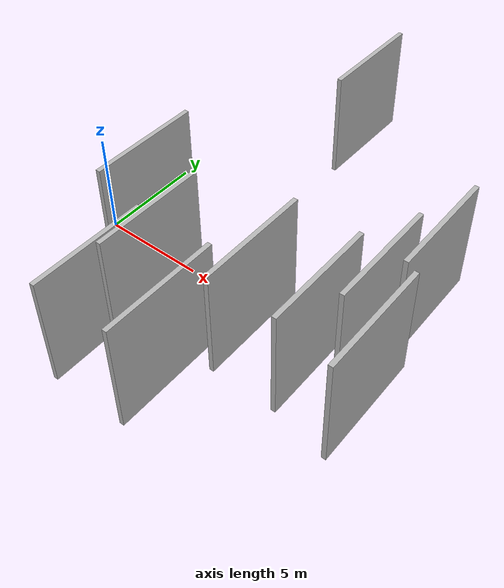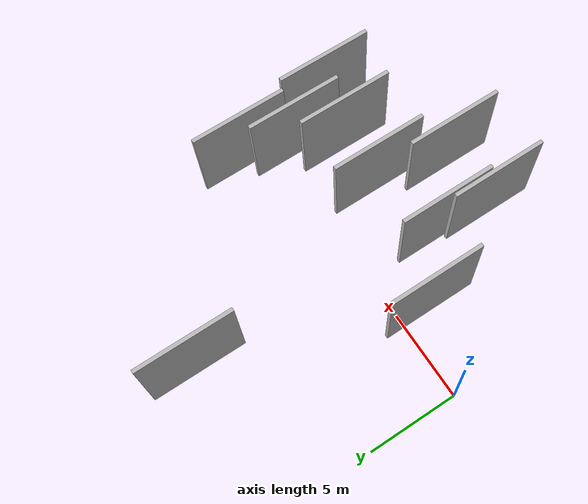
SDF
<sdf version="1.6">
 <world name="default">
  <scene>
   <sky><clouds><speed>12</speed></clouds></sky>
   <ambient>0.4 0.4 0.4 1</ambient>
   <background>0.7 0.7 0.7 1</background>
   <shadows>1</shadows>
  </scene>
  <gravity>0 0 -9.8066</gravity>
  <magnetic_field>6e-06 2.3e-05 -4.2e-05</magnetic_field>
  <physics default="0" name="default_physics" type="ode">
   <ode>
    <solver>
     <type>quick</type>
     <iters>10</iters>
     <sor>1.0</sor>
     <use_dynamic_moi_rescaling>0</use_dynamic_moi_rescaling>
    </solver>
    <constraints>
     <cfm>0</cfm>
     <erp>0.2</erp>
     <contact_max_correcting_vel>100</contact_max_correcting_vel>
     <contact_surface_layer>0.001</contact_surface_layer>
    </constraints>
   </ode>
   <max_step_size>0.004</max_step_size>
   <real_time_factor>1</real_time_factor>
   <real_time_update_rate>250</real_time_update_rate>
  </physics>
  <light name="sun" type="directional">
   <pose>0 0 10 0 0 0</pose>
   <diffuse>0.8 0.8 0.8 1</diffuse>
   <specular>0.2 0.2 0.2 1</specular>
   <attenuation>
    <range>1000</range>
    <constant>0.9</constant>
    <linear>0.01</linear>
    <quadratic>0.001</quadratic>
   </attenuation>
   <direction>-0.5 0.1 -0.9</direction>
  </light>
  <model name="grey_wall_1">
   <static>1</static>
   <pose>15.5329 2.1612 2.5 0.000000 0.000000 1.570796</pose>
   <link name="link">
    <pose>0 0 2.50 0 0 0</pose>
    <collision name="collision"><geometry><box><size>5.00 0.2 5.00</size></box></geometry></collision>
    <visual name="visual">
     <cast_shadows>0</cast_shadows>
     <geometry><box><size>5.00 0.2 5.00</size></box></geometry>
     <material>
      <script>
       <uri>model://HANNAS_wall/materials/scripts</uri>
       <uri>model://HANNAS_wall/materials/textures</uri>
       <name>vrc/HANNAS_wall</name>
      </script>
     </material>
    </visual>
   </link>
  </model>
  <model name="grey_wall_2">
   <static>1</static>
   <pose>14.6908 -0.4237 2.5 0.000000 0.000000 1.570796</pose>
   <link name="link">
    <pose>0 0 2.50 0 0 0</pose>
    <collision name="collision"><geometry><box><size>5.00 0.2 5.00</size></box></geometry></collision>
    <visual name="visual">
     <cast_shadows>0</cast_shadows>
     <geometry><box><size>5.00 0.2 5.00</size></box></geometry>
     <material>
      <script>
       <uri>model://HANNAS_wall/materials/scripts</uri>
       <uri>model://HANNAS_wall/materials/textures</uri>
       <name>vrc/HANNAS_wall</name>
      </script>
     </material>
    </visual>
   </link>
  </model>
  <model name="grey_wall_3">
   <static>1</static>
   <pose>3.8322 -0.9519 2.5 0.000000 0.000000 1.570796</pose>
   <link name="link">
    <pose>0 0 2.50 0 0 0</pose>
    <collision name="collision"><geometry><box><size>5.00 0.2 5.00</size></box></geometry></collision>
    <visual name="visual">
     <cast_shadows>0</cast_shadows>
     <geometry><box><size>5.00 0.2 5.00</size></box></geometry>
     <material>
      <script>
       <uri>model://HANNAS_wall/materials/scripts</uri>
       <uri>model://HANNAS_wall/materials/textures</uri>
       <name>vrc/HANNAS_wall</name>
      </script>
     </material>
    </visual>
   </link>
  </model>
  <model name="grey_wall_4">
   <static>1</static>
   <pose>7.4619 9.8439 2.5 0.000000 0.000000 1.570796</pose>
   <link name="link">
    <pose>0 0 2.50 0 0 0</pose>
    <collision name="collision"><geometry><box><size>5.00 0.2 5.00</size></box></geometry></collision>
    <visual name="visual">
     <cast_shadows>0</cast_shadows>
     <geometry><box><size>5.00 0.2 5.00</size></box></geometry>
     <material>
      <script>
       <uri>model://HANNAS_wall/materials/scripts</uri>
       <uri>model://HANNAS_wall/materials/textures</uri>
       <name>vrc/HANNAS_wall</name>
      </script>
     </material>
    </visual>
   </link>
  </model>
  <model name="grey_wall_5">
   <static>1</static>
   <pose>6.4447 -6.3834 2.5 0.000000 0.000000 1.570796</pose>
   <link name="link">
    <pose>0 0 2.50 0 0 0</pose>
    <collision name="collision"><geometry><box><size>5.00 0.2 5.00</size></box></geometry></collision>
    <visual name="visual">
     <cast_shadows>0</cast_shadows>
     <geometry><box><size>5.00 0.2 5.00</size></box></geometry>
     <material>
      <script>
       <uri>model://HANNAS_wall/materials/scripts</uri>
       <uri>model://HANNAS_wall/materials/textures</uri>
       <name>vrc/HANNAS_wall</name>
      </script>
     </material>
    </visual>
   </link>
  </model>
  <model name="grey_wall_6">
   <static>1</static>
   <pose>10.6781 -2.5722 2.5 0.000000 0.000000 1.570796</pose>
   <link name="link">
    <pose>0 0 2.50 0 0 0</pose>
    <collision name="collision"><geometry><box><size>5.00 0.2 5.00</size></box></geometry></collision>
    <visual name="visual">
     <cast_shadows>0</cast_shadows>
     <geometry><box><size>5.00 0.2 5.00</size></box></geometry>
     <material>
      <script>
       <uri>model://HANNAS_wall/materials/scripts</uri>
       <uri>model://HANNAS_wall/materials/textures</uri>
       <name>vrc/HANNAS_wall</name>
      </script>
     </material>
    </visual>
   </link>
  </model>
  <model name="grey_wall_7">
   <static>1</static>
   <pose>13.5671 -2.5783 2.5 0.000000 0.000000 1.570796</pose>
   <link name="link">
    <pose>0 0 2.50 0 0 0</pose>
    <collision name="collision"><geometry><box><size>5.00 0.2 5.00</size></box></geometry></collision>
    <visual name="visual">
     <cast_shadows>0</cast_shadows>
     <geometry><box><size>5.00 0.2 5.00</size></box></geometry>
     <material>
      <script>
       <uri>model://HANNAS_wall/materials/scripts</uri>
       <uri>model://HANNAS_wall/materials/textures</uri>
       <name>vrc/HANNAS_wall</name>
      </script>
     </material>
    </visual>
   </link>
  </model>
  <model name="grey_wall_8">
   <static>1</static>
   <pose>6.7159 -3.6746 2.5 0.000000 0.000000 1.570796</pose>
   <link name="link">
    <pose>0 0 2.50 0 0 0</pose>
    <collision name="collision"><geometry><box><size>5.00 0.2 5.00</size></box></geometry></collision>
    <visual name="visual">
     <cast_shadows>0</cast_shadows>
     <geometry><box><size>5.00 0.2 5.00</size></box></geometry>
     <material>
      <script>
       <uri>model://HANNAS_wall/materials/scripts</uri>
       <uri>model://HANNAS_wall/materials/textures</uri>
       <name>vrc/HANNAS_wall</name>
      </script>
     </material>
    </visual>
   </link>
  </model>
  <model name="grey_wall_9">
   <static>1</static>
   <pose>16.0797 -3.0275 2.5 0.000000 0.000000 1.570796</pose>
   <link name="link">
    <pose>0 0 2.50 0 0 0</pose>
    <collision name="collision"><geometry><box><size>5.00 0.2 5.00</size></box></geometry></collision>
    <visual name="visual">
     <cast_shadows>0</cast_shadows>
     <geometry><box><size>5.00 0.2 5.00</size></box></geometry>
     <material>
      <script>
       <uri>model://HANNAS_wall/materials/scripts</uri>
       <uri>model://HANNAS_wall/materials/textures</uri>
       <name>vrc/HANNAS_wall</name>
      </script>
     </material>
    </visual>
   </link>
  </model>
  <model name="grey_wall_10">
   <static>1</static>
   <pose>9.7554 -6.2828 2.5 0.000000 0.000000 1.570796</pose>
   <link name="link">
    <pose>0 0 2.50 0 0 0</pose>
    <collision name="collision"><geometry><box><size>5.00 0.2 5.00</size></box></geometry></collision>
    <visual name="visual">
     <cast_shadows>0</cast_shadows>
     <geometry><box><size>5.00 0.2 5.00</size></box></geometry>
     <material>
      <script>
       <uri>model://HANNAS_wall/materials/scripts</uri>
       <uri>model://HANNAS_wall/materials/textures</uri>
       <name>vrc/HANNAS_wall</name>
      </script>
     </material>
    </visual>
   </link>
  </model>
 </world>
</sdf>
